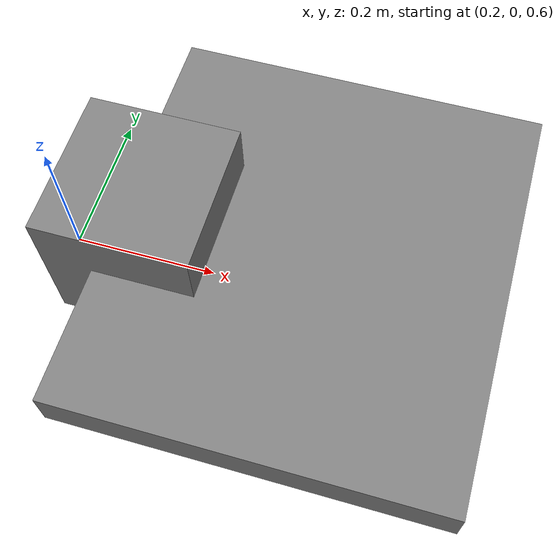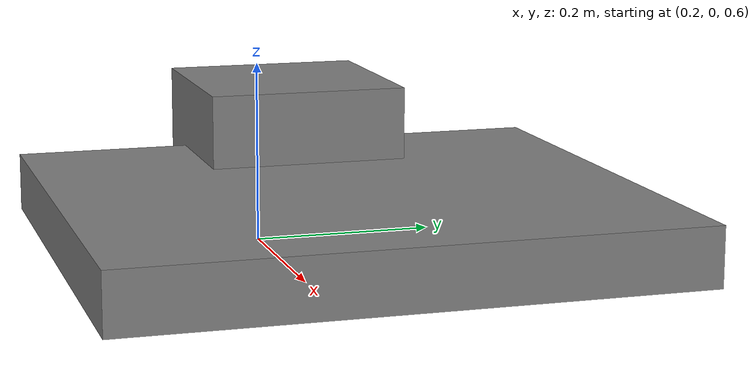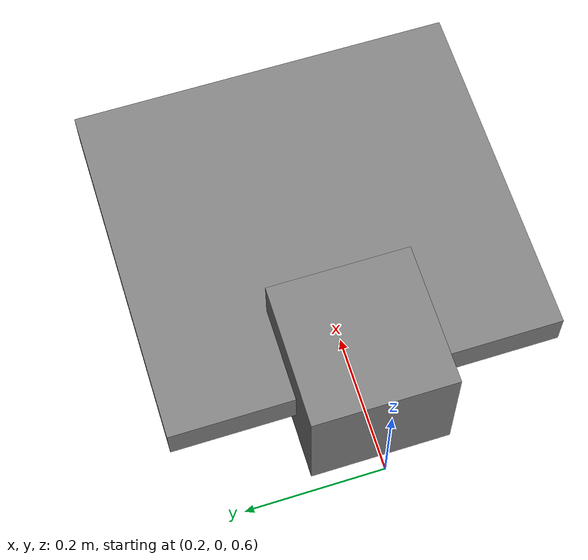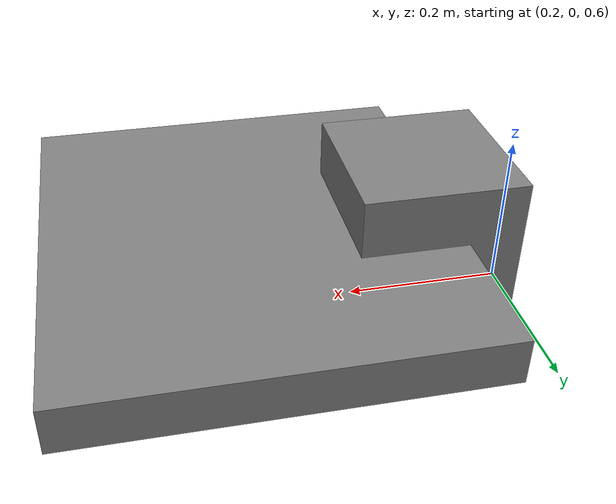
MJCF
<?xml version="1.0"?>
<mujoco model="platform">
    <compiler angle="radian" meshdir="meshes/platform/"/>

    <size njmax="500" nconmax="100"/>
    <default>
        <default class="collision">
          <geom condim="3" type="mesh" group="0" />
        </default>
        <default class="visual">
          <geom condim="3" type="mesh" group="1" conaffinity="0" contype="0" />
        </default>
    </default>
    <asset>
        <mesh name="cube" file="cube.stl"/>
    </asset>
    <worldbody>
	<body name="env">
	  <geom name="table" class="collision" type="box" mass="10" size="0.25 0.275 0.02875" pos="0.536428 0.0 0.7"/>
	</body>

	<body name="cube" pos="0 0 0">
	  <freejoint name="root" />
	  <geom name="cube" type="box" class="collision" size="0.1 0.1 0.1" pos="0.32 0.0 0.702" mass="1" condim="6"/>
	</body>

    </worldbody>
</mujoco>
